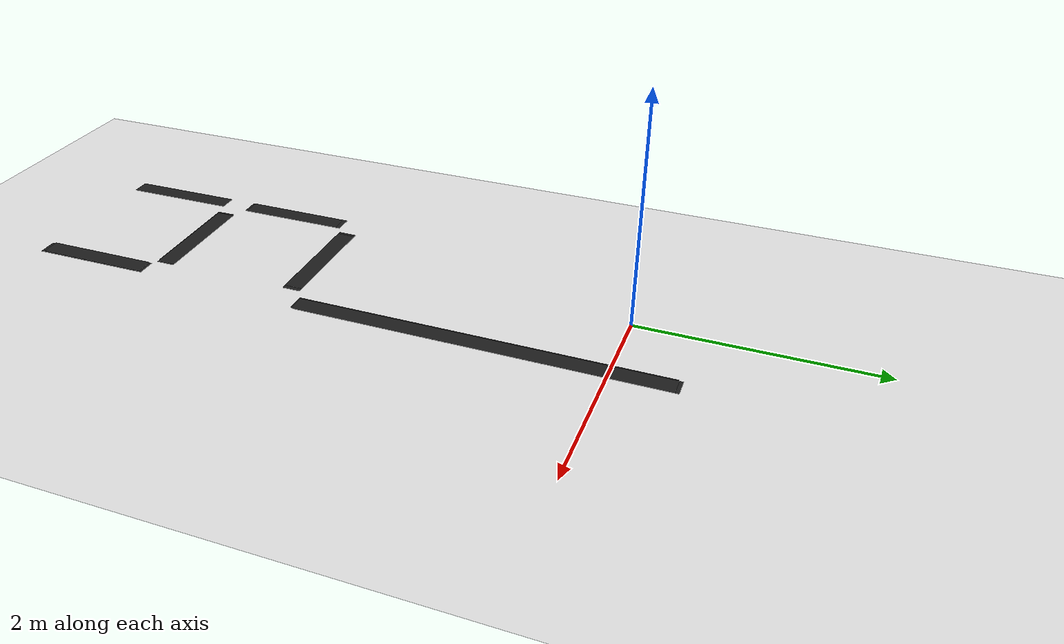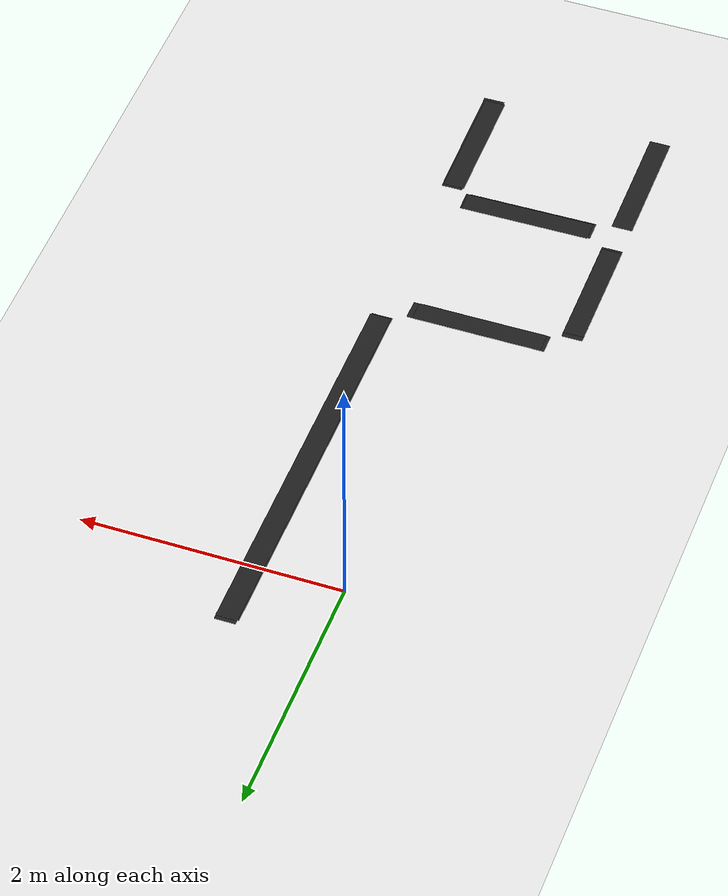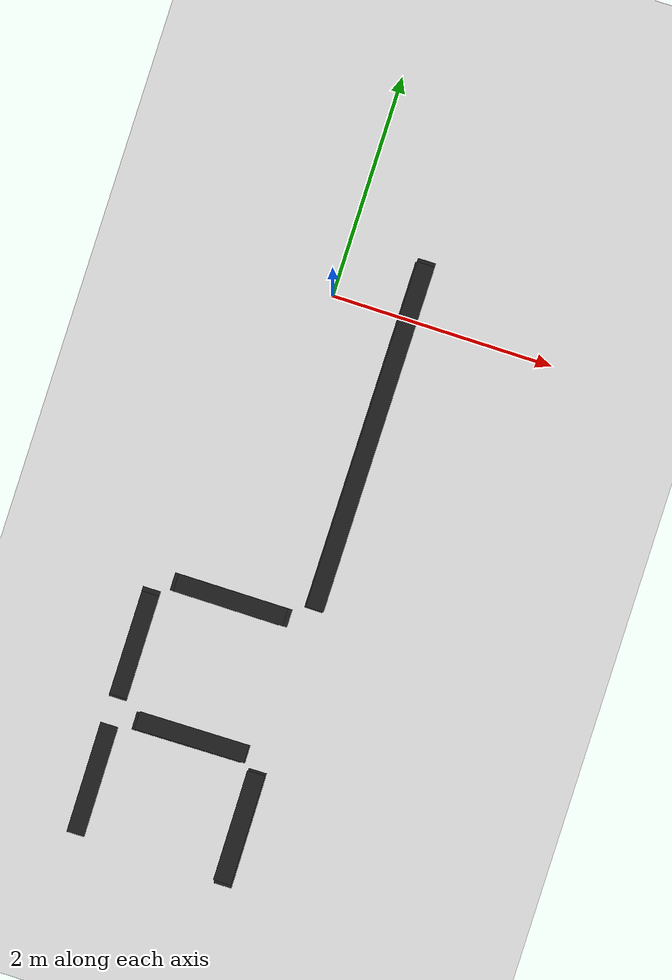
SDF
<sdf version="1.7">
 <world name="default">
  <model name="ground_plane">
   <static>1</static>
   <link name="link">
    <collision name="collision">
     <geometry><plane><normal>0 0 1</normal><size>100 100</size></plane></geometry>
     <surface>
      <contact><collide_bitmask>65535</collide_bitmask></contact>
      <friction><ode><mu>100</mu><mu2>50</mu2></ode></friction>
     </surface>
    </collision>
    <visual name="visual">
     <cast_shadows>0</cast_shadows>
     <geometry><plane><normal>0 0 1</normal><size>100 100</size></plane></geometry>
     <material>
      <script><uri>file://media/materials/scripts/gazebo.material</uri><name>Gazebo/White</name></script>
     </material>
    </visual>
   </link>
  </model>
  <model name="unit_box_clone_0_clone_clone_0">
   <link name="link">
    <inertial>
     <mass>1</mass>
     <inertia>
      <ixx>0.166667</ixx>
      <ixy>0</ixy>
      <ixz>0</ixz>
      <iyy>0.166667</iyy>
      <iyz>0</iyz>
      <izz>0.166667</izz>
     </inertia>
    </inertial>
    <visual name="visual">
     <geometry><box><size>1 0.160776 0.000937</size></box></geometry>
     <material>
      <script><name>Gazebo/Black</name><uri>file://media/materials/scripts/gazebo.material</uri></script>
      <shader type="pixel"><normal_map>__default__</normal_map></shader>
      <ambient>0 0 0 1</ambient>
      <diffuse>0 0 0 1</diffuse>
      <specular>0.1 0.1 0.1 1</specular>
      <emissive>0 0 0 1</emissive>
     </material>
    </visual>
    <collision name="collision">
     <geometry><box><size>1 0.160776 0.000937</size></box></geometry>
     <surface>
      <friction>
       <ode><mu>1</mu><mu2>1</mu2><fdir1>0 0 0</fdir1><slip1>0</slip1><slip2>0</slip2></ode>
       <torsional>
        <coefficient>1</coefficient>
        <patch_radius>0</patch_radius>
        <surface_radius>0</surface_radius>
        <use_patch_radius>1</use_patch_radius>
        <ode><slip>0</slip></ode>
       </torsional>
      </friction>
      <bounce><restitution_coefficient>0</restitution_coefficient><threshold>1e+06</threshold></bounce>
      <contact>
       <collide_without_contact>0</collide_without_contact>
       <collide_without_contact_bitmask>1</collide_without_contact_bitmask>
       <collide_bitmask>1</collide_bitmask>
       <ode>
        <soft_cfm>0</soft_cfm>
        <soft_erp>0.2</soft_erp>
        <kp>1e+13</kp>
        <kd>1</kd>
        <max_vel>0.01</max_vel>
        <min_depth>0</min_depth>
       </ode>
       <bullet>
        <split_impulse>1</split_impulse>
        <split_impulse_penetration_threshold>-0.01</split_impulse_penetration_threshold>
        <soft_cfm>0</soft_cfm>
        <soft_erp>0.2</soft_erp>
        <kp>1e+13</kp>
        <kd>1</kd>
       </bullet>
      </contact>
     </surface>
    </collision>
   </link>
   <static>0</static>
   <pose>-0.000679 -2.79041 0.001946 3e-06 0.000266 -0.000147</pose>
  </model>
  <model name="unit_box_clone_0_clone_clone_clone_clone_clone_clone_clone_0_clone">
   <link name="link">
    <inertial>
     <mass>1</mass>
     <inertia>
      <ixx>0.166667</ixx>
      <ixy>0</ixy>
      <ixz>0</ixz>
      <iyy>0.166667</iyy>
      <iyz>0</iyz>
      <izz>0.166667</izz>
     </inertia>
    </inertial>
    <visual name="visual">
     <geometry><box><size>3.16167 0.161571 0.000937</size></box></geometry>
     <material>
      <script><name>Gazebo/Black</name><uri>file://media/materials/scripts/gazebo.material</uri></script>
      <shader type="pixel"><normal_map>__default__</normal_map></shader>
      <ambient>0 0 0 1</ambient>
      <diffuse>0 0 0 1</diffuse>
      <specular>0.1 0.1 0.1 1</specular>
      <emissive>0 0 0 1</emissive>
     </material>
    </visual>
    <collision name="collision">
     <geometry><box><size>3.16167 0.161571 0.000937</size></box></geometry>
     <surface>
      <friction>
       <ode><mu>1</mu><mu2>1</mu2><fdir1>0 0 0</fdir1><slip1>0</slip1><slip2>0</slip2></ode>
       <torsional>
        <coefficient>1</coefficient>
        <patch_radius>0</patch_radius>
        <surface_radius>0</surface_radius>
        <use_patch_radius>1</use_patch_radius>
        <ode><slip>0</slip></ode>
       </torsional>
      </friction>
      <bounce><restitution_coefficient>0</restitution_coefficient><threshold>1e+06</threshold></bounce>
      <contact>
       <collide_without_contact>0</collide_without_contact>
       <collide_without_contact_bitmask>1</collide_without_contact_bitmask>
       <collide_bitmask>1</collide_bitmask>
       <ode>
        <soft_cfm>0</soft_cfm>
        <soft_erp>0.2</soft_erp>
        <kp>1e+13</kp>
        <kd>1</kd>
        <max_vel>0.01</max_vel>
        <min_depth>0</min_depth>
       </ode>
       <bullet>
        <split_impulse>1</split_impulse>
        <split_impulse_penetration_threshold>-0.01</split_impulse_penetration_threshold>
        <soft_cfm>0</soft_cfm>
        <soft_erp>0.2</soft_erp>
        <kp>1e+13</kp>
        <kd>1</kd>
       </bullet>
      </contact>
     </surface>
    </collision>
   </link>
   <static>0</static>
   <pose>0.685983 -1.06842 0.00204 -2.8e-05 0.000204 -1.57331</pose>
  </model>
  <model name="unit_box_clone_0_clone_clone_0_clone_1">
   <link name="link">
    <inertial>
     <mass>1</mass>
     <inertia>
      <ixx>0.166667</ixx>
      <ixy>0</ixy>
      <ixz>0</ixz>
      <iyy>0.166667</iyy>
      <iyz>0</iyz>
      <izz>0.166667</izz>
     </inertia>
    </inertial>
    <visual name="visual">
     <geometry><box><size>1 0.160776 0.000937</size></box></geometry>
     <material>
      <script><name>Gazebo/Black</name><uri>file://media/materials/scripts/gazebo.material</uri></script>
      <shader type="pixel"><normal_map>__default__</normal_map></shader>
      <ambient>0 0 0 1</ambient>
      <diffuse>0 0 0 1</diffuse>
      <specular>0.1 0.1 0.1 1</specular>
      <emissive>0 0 0 1</emissive>
     </material>
    </visual>
    <collision name="collision">
     <geometry><box><size>1 0.160776 0.000937</size></box></geometry>
     <surface>
      <friction>
       <ode><mu>1</mu><mu2>1</mu2><fdir1>0 0 0</fdir1><slip1>0</slip1><slip2>0</slip2></ode>
       <torsional>
        <coefficient>1</coefficient>
        <patch_radius>0</patch_radius>
        <surface_radius>0</surface_radius>
        <use_patch_radius>1</use_patch_radius>
        <ode><slip>0</slip></ode>
       </torsional>
      </friction>
      <bounce><restitution_coefficient>0</restitution_coefficient><threshold>1e+06</threshold></bounce>
      <contact>
       <collide_without_contact>0</collide_without_contact>
       <collide_without_contact_bitmask>1</collide_without_contact_bitmask>
       <collide_bitmask>1</collide_bitmask>
       <ode>
        <soft_cfm>0</soft_cfm>
        <soft_erp>0.2</soft_erp>
        <kp>1e+13</kp>
        <kd>1</kd>
        <max_vel>0.01</max_vel>
        <min_depth>0</min_depth>
       </ode>
       <bullet>
        <split_impulse>1</split_impulse>
        <split_impulse_penetration_threshold>-0.01</split_impulse_penetration_threshold>
        <soft_cfm>0</soft_cfm>
        <soft_erp>0.2</soft_erp>
        <kp>1e+13</kp>
        <kd>1</kd>
       </bullet>
      </contact>
     </surface>
    </collision>
   </link>
   <static>0</static>
   <pose>0.011094 -4.03607 0.001352 -6e-06 -4e-05 0.011915</pose>
  </model>
  <model name="unit_box_clone_0_clone_clone_0_clone_clone_clone_2">
   <link name="link">
    <inertial>
     <mass>1</mass>
     <inertia>
      <ixx>0.166667</ixx>
      <ixy>0</ixy>
      <ixz>0</ixz>
      <iyy>0.166667</iyy>
      <iyz>0</iyz>
      <izz>0.166667</izz>
     </inertia>
    </inertial>
    <visual name="visual">
     <geometry><box><size>1 0.160776 0.000937</size></box></geometry>
     <material>
      <script><name>Gazebo/Black</name><uri>file://media/materials/scripts/gazebo.material</uri></script>
      <shader type="pixel"><normal_map>__default__</normal_map></shader>
      <ambient>0 0 0 1</ambient>
      <diffuse>0 0 0 1</diffuse>
      <specular>0.1 0.1 0.1 1</specular>
      <emissive>0 0 0 1</emissive>
     </material>
    </visual>
    <collision name="collision">
     <geometry><box><size>1 0.160776 0.000937</size></box></geometry>
     <surface>
      <friction>
       <ode><mu>1</mu><mu2>1</mu2><fdir1>0 0 0</fdir1><slip1>0</slip1><slip2>0</slip2></ode>
       <torsional>
        <coefficient>1</coefficient>
        <patch_radius>0</patch_radius>
        <surface_radius>0</surface_radius>
        <use_patch_radius>1</use_patch_radius>
        <ode><slip>0</slip></ode>
       </torsional>
      </friction>
      <bounce><restitution_coefficient>0</restitution_coefficient><threshold>1e+06</threshold></bounce>
      <contact>
       <collide_without_contact>0</collide_without_contact>
       <collide_without_contact_bitmask>1</collide_without_contact_bitmask>
       <collide_bitmask>1</collide_bitmask>
       <ode>
        <soft_cfm>0</soft_cfm>
        <soft_erp>0.2</soft_erp>
        <kp>1e+13</kp>
        <kd>1</kd>
        <max_vel>0.01</max_vel>
        <min_depth>0</min_depth>
       </ode>
       <bullet>
        <split_impulse>1</split_impulse>
        <split_impulse_penetration_threshold>-0.01</split_impulse_penetration_threshold>
        <soft_cfm>0</soft_cfm>
        <soft_erp>0.2</soft_erp>
        <kp>1e+13</kp>
        <kd>1</kd>
       </bullet>
      </contact>
     </surface>
    </collision>
   </link>
   <static>0</static>
   <pose>0.634884 -4.66107 0.002215 3e-06 -1.7e-05 -1.5636</pose>
  </model>
  <model name="unit_box_clone_0_clone_clone_0_clone_clone_clone_2_clone">
   <link name="link">
    <inertial>
     <mass>1</mass>
     <inertia>
      <ixx>0.166667</ixx>
      <ixy>0</ixy>
      <ixz>0</ixz>
      <iyy>0.166667</iyy>
      <iyz>0</iyz>
      <izz>0.166667</izz>
     </inertia>
    </inertial>
    <visual name="visual">
     <geometry><box><size>1 0.160776 0.000937</size></box></geometry>
     <material>
      <script><name>Gazebo/Black</name><uri>file://media/materials/scripts/gazebo.material</uri></script>
      <shader type="pixel"><normal_map>__default__</normal_map></shader>
      <ambient>0 0 0 1</ambient>
      <diffuse>0 0 0 1</diffuse>
      <specular>0.1 0.1 0.1 1</specular>
      <emissive>0 0 0 1</emissive>
     </material>
    </visual>
    <collision name="collision">
     <geometry><box><size>1 0.160776 0.000937</size></box></geometry>
     <surface>
      <friction>
       <ode><mu>1</mu><mu2>1</mu2><fdir1>0 0 0</fdir1><slip1>0</slip1><slip2>0</slip2></ode>
       <torsional>
        <coefficient>1</coefficient>
        <patch_radius>0</patch_radius>
        <surface_radius>0</surface_radius>
        <use_patch_radius>1</use_patch_radius>
        <ode><slip>0</slip></ode>
       </torsional>
      </friction>
      <bounce><restitution_coefficient>0</restitution_coefficient><threshold>1e+06</threshold></bounce>
      <contact>
       <collide_without_contact>0</collide_without_contact>
       <collide_without_contact_bitmask>1</collide_without_contact_bitmask>
       <collide_bitmask>1</collide_bitmask>
       <ode>
        <soft_cfm>0</soft_cfm>
        <soft_erp>0.2</soft_erp>
        <kp>1e+13</kp>
        <kd>1</kd>
        <max_vel>0.01</max_vel>
        <min_depth>0</min_depth>
       </ode>
       <bullet>
        <split_impulse>1</split_impulse>
        <split_impulse_penetration_threshold>-0.01</split_impulse_penetration_threshold>
        <soft_cfm>0</soft_cfm>
        <soft_erp>0.2</soft_erp>
        <kp>1e+13</kp>
        <kd>1</kd>
       </bullet>
      </contact>
     </surface>
    </collision>
   </link>
   <static>0</static>
   <pose>-0.719144 -3.40915 0.000469 2e-06 -0 -1.56543</pose>
  </model>
  <model name="unit_box_clone_0_clone_clone_0_clone_0_clone_1">
   <link name="link">
    <inertial>
     <mass>1</mass>
     <inertia>
      <ixx>0.166667</ixx>
      <ixy>0</ixy>
      <ixz>0</ixz>
      <iyy>0.166667</iyy>
      <iyz>0</iyz>
      <izz>0.166667</izz>
     </inertia>
    </inertial>
    <visual name="visual">
     <geometry><box><size>1 0.160776 0.000937</size></box></geometry>
     <material>
      <script><name>Gazebo/Black</name><uri>file://media/materials/scripts/gazebo.material</uri></script>
      <shader type="pixel"><normal_map>__default__</normal_map></shader>
      <ambient>0 0 0 1</ambient>
      <diffuse>0 0 0 1</diffuse>
      <specular>0.1 0.1 0.1 1</specular>
      <emissive>0 0 0 1</emissive>
     </material>
    </visual>
    <collision name="collision">
     <geometry><box><size>1 0.160776 0.000937</size></box></geometry>
     <surface>
      <friction>
       <ode><mu>1</mu><mu2>1</mu2><fdir1>0 0 0</fdir1><slip1>0</slip1><slip2>0</slip2></ode>
       <torsional>
        <coefficient>1</coefficient>
        <patch_radius>0</patch_radius>
        <surface_radius>0</surface_radius>
        <use_patch_radius>1</use_patch_radius>
        <ode><slip>0</slip></ode>
       </torsional>
      </friction>
      <bounce><restitution_coefficient>0</restitution_coefficient><threshold>1e+06</threshold></bounce>
      <contact>
       <collide_without_contact>0</collide_without_contact>
       <collide_without_contact_bitmask>1</collide_without_contact_bitmask>
       <collide_bitmask>1</collide_bitmask>
       <ode>
        <soft_cfm>0</soft_cfm>
        <soft_erp>0.2</soft_erp>
        <kp>1e+13</kp>
        <kd>1</kd>
        <max_vel>0.01</max_vel>
        <min_depth>0</min_depth>
       </ode>
       <bullet>
        <split_impulse>1</split_impulse>
        <split_impulse_penetration_threshold>-0.01</split_impulse_penetration_threshold>
        <soft_cfm>0</soft_cfm>
        <soft_erp>0.2</soft_erp>
        <kp>1e+13</kp>
        <kd>1</kd>
       </bullet>
      </contact>
     </surface>
    </collision>
   </link>
   <static>0</static>
   <pose>-0.041119 -2.7916 0.002893 4e-06 0.000266 0.000137</pose>
  </model>
  <model name="unit_box_clone_0_clone_clone_0_clone_0_clone_2">
   <link name="link">
    <inertial>
     <mass>1</mass>
     <inertia>
      <ixx>0.166667</ixx>
      <ixy>0</ixy>
      <ixz>0</ixz>
      <iyy>0.166667</iyy>
      <iyz>0</iyz>
      <izz>0.166667</izz>
     </inertia>
    </inertial>
    <visual name="visual">
     <geometry><box><size>1 0.160776 0.000937</size></box></geometry>
     <material>
      <script><name>Gazebo/Black</name><uri>file://media/materials/scripts/gazebo.material</uri></script>
      <shader type="pixel"><normal_map>__default__</normal_map></shader>
      <ambient>0 0 0 1</ambient>
      <diffuse>0 0 0 1</diffuse>
      <specular>0.1 0.1 0.1 1</specular>
      <emissive>0 0 0 1</emissive>
     </material>
    </visual>
    <collision name="collision">
     <geometry><box><size>1 0.160776 0.000937</size></box></geometry>
     <surface>
      <friction>
       <ode><mu>1</mu><mu2>1</mu2><fdir1>0 0 0</fdir1><slip1>0</slip1><slip2>0</slip2></ode>
       <torsional>
        <coefficient>1</coefficient>
        <patch_radius>0</patch_radius>
        <surface_radius>0</surface_radius>
        <use_patch_radius>1</use_patch_radius>
        <ode><slip>0</slip></ode>
       </torsional>
      </friction>
      <bounce><restitution_coefficient>0</restitution_coefficient><threshold>1e+06</threshold></bounce>
      <contact>
       <collide_without_contact>0</collide_without_contact>
       <collide_without_contact_bitmask>1</collide_without_contact_bitmask>
       <collide_bitmask>1</collide_bitmask>
       <ode>
        <soft_cfm>0</soft_cfm>
        <soft_erp>0.2</soft_erp>
        <kp>1e+13</kp>
        <kd>1</kd>
        <max_vel>0.01</max_vel>
        <min_depth>0</min_depth>
       </ode>
       <bullet>
        <split_impulse>1</split_impulse>
        <split_impulse_penetration_threshold>-0.01</split_impulse_penetration_threshold>
        <soft_cfm>0</soft_cfm>
        <soft_erp>0.2</soft_erp>
        <kp>1e+13</kp>
        <kd>1</kd>
       </bullet>
      </contact>
     </surface>
    </collision>
   </link>
   <static>0</static>
   <pose>-0.028517 -2.79151 0.000468 1e-06 0 -0.000912</pose>
  </model>
  <model name="unit_box_clone_0_clone_clone_0_clone_0_clone_3">
   <link name="link">
    <inertial>
     <mass>1</mass>
     <inertia>
      <ixx>0.166667</ixx>
      <ixy>0</ixy>
      <ixz>0</ixz>
      <iyy>0.166667</iyy>
      <iyz>0</iyz>
      <izz>0.166667</izz>
     </inertia>
    </inertial>
    <visual name="visual">
     <geometry><box><size>1 0.160776 0.000937</size></box></geometry>
     <material>
      <script><name>Gazebo/Black</name><uri>file://media/materials/scripts/gazebo.material</uri></script>
      <shader type="pixel"><normal_map>__default__</normal_map></shader>
      <ambient>0 0 0 1</ambient>
      <diffuse>0 0 0 1</diffuse>
      <specular>0.1 0.1 0.1 1</specular>
      <emissive>0 0 0 1</emissive>
     </material>
    </visual>
    <collision name="collision">
     <geometry><box><size>1 0.160776 0.000937</size></box></geometry>
     <surface>
      <friction>
       <ode><mu>1</mu><mu2>1</mu2><fdir1>0 0 0</fdir1><slip1>0</slip1><slip2>0</slip2></ode>
       <torsional>
        <coefficient>1</coefficient>
        <patch_radius>0</patch_radius>
        <surface_radius>0</surface_radius>
        <use_patch_radius>1</use_patch_radius>
        <ode><slip>0</slip></ode>
       </torsional>
      </friction>
      <bounce><restitution_coefficient>0</restitution_coefficient><threshold>1e+06</threshold></bounce>
      <contact>
       <collide_without_contact>0</collide_without_contact>
       <collide_without_contact_bitmask>1</collide_without_contact_bitmask>
       <collide_bitmask>1</collide_bitmask>
       <ode>
        <soft_cfm>0</soft_cfm>
        <soft_erp>0.2</soft_erp>
        <kp>1e+13</kp>
        <kd>1</kd>
        <max_vel>0.01</max_vel>
        <min_depth>0</min_depth>
       </ode>
       <bullet>
        <split_impulse>1</split_impulse>
        <split_impulse_penetration_threshold>-0.01</split_impulse_penetration_threshold>
        <soft_cfm>0</soft_cfm>
        <soft_erp>0.2</soft_erp>
        <kp>1e+13</kp>
        <kd>1</kd>
       </bullet>
      </contact>
     </surface>
    </collision>
   </link>
   <static>0</static>
   <pose>-0.070832 -2.79248 0.00124 3e-06 -0.000332 -0.00424</pose>
  </model>
  <model name="unit_box_clone_0_clone_clone_0_clone_1_clone_0">
   <link name="link">
    <inertial>
     <mass>1</mass>
     <inertia>
      <ixx>0.166667</ixx>
      <ixy>0</ixy>
      <ixz>0</ixz>
      <iyy>0.166667</iyy>
      <iyz>0</iyz>
      <izz>0.166667</izz>
     </inertia>
    </inertial>
    <visual name="visual">
     <geometry><box><size>1 0.160776 0.000937</size></box></geometry>
     <material>
      <script><name>Gazebo/Black</name><uri>file://media/materials/scripts/gazebo.material</uri></script>
      <shader type="pixel"><normal_map>__default__</normal_map></shader>
      <ambient>0 0 0 1</ambient>
      <diffuse>0 0 0 1</diffuse>
      <specular>0.1 0.1 0.1 1</specular>
      <emissive>0 0 0 1</emissive>
     </material>
    </visual>
    <collision name="collision">
     <geometry><box><size>1 0.160776 0.000937</size></box></geometry>
     <surface>
      <friction>
       <ode><mu>1</mu><mu2>1</mu2><fdir1>0 0 0</fdir1><slip1>0</slip1><slip2>0</slip2></ode>
       <torsional>
        <coefficient>1</coefficient>
        <patch_radius>0</patch_radius>
        <surface_radius>0</surface_radius>
        <use_patch_radius>1</use_patch_radius>
        <ode><slip>0</slip></ode>
       </torsional>
      </friction>
      <bounce><restitution_coefficient>0</restitution_coefficient><threshold>1e+06</threshold></bounce>
      <contact>
       <collide_without_contact>0</collide_without_contact>
       <collide_without_contact_bitmask>1</collide_without_contact_bitmask>
       <collide_bitmask>1</collide_bitmask>
       <ode>
        <soft_cfm>0</soft_cfm>
        <soft_erp>0.2</soft_erp>
        <kp>1e+13</kp>
        <kd>1</kd>
        <max_vel>0.01</max_vel>
        <min_depth>0</min_depth>
       </ode>
       <bullet>
        <split_impulse>1</split_impulse>
        <split_impulse_penetration_threshold>-0.01</split_impulse_penetration_threshold>
        <soft_cfm>0</soft_cfm>
        <soft_erp>0.2</soft_erp>
        <kp>1e+13</kp>
        <kd>1</kd>
       </bullet>
      </contact>
     </surface>
    </collision>
   </link>
   <static>0</static>
   <pose>0.000691 -4.03334 0.002289 -6e-06 -4e-05 0.009218</pose>
  </model>
  <model name="unit_box_clone_0_clone_clone_0_clone_1_clone_1">
   <link name="link">
    <inertial>
     <mass>1</mass>
     <inertia>
      <ixx>0.166667</ixx>
      <ixy>0</ixy>
      <ixz>0</ixz>
      <iyy>0.166667</iyy>
      <iyz>0</iyz>
      <izz>0.166667</izz>
     </inertia>
    </inertial>
    <visual name="visual">
     <geometry><box><size>1 0.160776 0.000937</size></box></geometry>
     <material>
      <script><name>Gazebo/Black</name><uri>file://media/materials/scripts/gazebo.material</uri></script>
      <shader type="pixel"><normal_map>__default__</normal_map></shader>
      <ambient>0 0 0 1</ambient>
      <diffuse>0 0 0 1</diffuse>
      <specular>0.1 0.1 0.1 1</specular>
      <emissive>0 0 0 1</emissive>
     </material>
    </visual>
    <collision name="collision">
     <geometry><box><size>1 0.160776 0.000937</size></box></geometry>
     <surface>
      <friction>
       <ode><mu>1</mu><mu2>1</mu2><fdir1>0 0 0</fdir1><slip1>0</slip1><slip2>0</slip2></ode>
       <torsional>
        <coefficient>1</coefficient>
        <patch_radius>0</patch_radius>
        <surface_radius>0</surface_radius>
        <use_patch_radius>1</use_patch_radius>
        <ode><slip>0</slip></ode>
       </torsional>
      </friction>
      <bounce><restitution_coefficient>0</restitution_coefficient><threshold>1e+06</threshold></bounce>
      <contact>
       <collide_without_contact>0</collide_without_contact>
       <collide_without_contact_bitmask>1</collide_without_contact_bitmask>
       <collide_bitmask>1</collide_bitmask>
       <ode>
        <soft_cfm>0</soft_cfm>
        <soft_erp>0.2</soft_erp>
        <kp>1e+13</kp>
        <kd>1</kd>
        <max_vel>0.01</max_vel>
        <min_depth>0</min_depth>
       </ode>
       <bullet>
        <split_impulse>1</split_impulse>
        <split_impulse_penetration_threshold>-0.01</split_impulse_penetration_threshold>
        <soft_cfm>0</soft_cfm>
        <soft_erp>0.2</soft_erp>
        <kp>1e+13</kp>
        <kd>1</kd>
       </bullet>
      </contact>
     </surface>
    </collision>
   </link>
   <static>0</static>
   <pose>-0.019997 -4.04191 0.000463 -4e-06 -1.1e-05 0.011404</pose>
  </model>
  <model name="unit_box_clone_0_clone_clone_0_clone_clone_clone_1_clone_0">
   <link name="link">
    <inertial>
     <mass>1</mass>
     <inertia>
      <ixx>0.166667</ixx>
      <ixy>0</ixy>
      <ixz>0</ixz>
      <iyy>0.166667</iyy>
      <iyz>0</iyz>
      <izz>0.166667</izz>
     </inertia>
    </inertial>
    <visual name="visual">
     <geometry><box><size>1 0.160776 0.000937</size></box></geometry>
     <material>
      <script><name>Gazebo/Black</name><uri>file://media/materials/scripts/gazebo.material</uri></script>
      <shader type="pixel"><normal_map>__default__</normal_map></shader>
      <ambient>0 0 0 1</ambient>
      <diffuse>0 0 0 1</diffuse>
      <specular>0.1 0.1 0.1 1</specular>
      <emissive>0 0 0 1</emissive>
     </material>
    </visual>
    <collision name="collision">
     <geometry><box><size>1 0.160776 0.000937</size></box></geometry>
     <surface>
      <friction>
       <ode><mu>1</mu><mu2>1</mu2><fdir1>0 0 0</fdir1><slip1>0</slip1><slip2>0</slip2></ode>
       <torsional>
        <coefficient>1</coefficient>
        <patch_radius>0</patch_radius>
        <surface_radius>0</surface_radius>
        <use_patch_radius>1</use_patch_radius>
        <ode><slip>0</slip></ode>
       </torsional>
      </friction>
      <bounce><restitution_coefficient>0</restitution_coefficient><threshold>1e+06</threshold></bounce>
      <contact>
       <collide_without_contact>0</collide_without_contact>
       <collide_without_contact_bitmask>1</collide_without_contact_bitmask>
       <collide_bitmask>1</collide_bitmask>
       <ode>
        <soft_cfm>0</soft_cfm>
        <soft_erp>0.2</soft_erp>
        <kp>1e+13</kp>
        <kd>1</kd>
        <max_vel>0.01</max_vel>
        <min_depth>0</min_depth>
       </ode>
       <bullet>
        <split_impulse>1</split_impulse>
        <split_impulse_penetration_threshold>-0.01</split_impulse_penetration_threshold>
        <soft_cfm>0</soft_cfm>
        <soft_erp>0.2</soft_erp>
        <kp>1e+13</kp>
        <kd>1</kd>
       </bullet>
      </contact>
     </surface>
    </collision>
   </link>
   <static>0</static>
   <pose>-0.710878 -4.64876 0.001337 3e-06 -0.000137 -1.56253</pose>
  </model>
  <model name="unit_box_clone_0_clone_clone_0_clone_clone_clone_2_clone_0">
   <link name="link">
    <inertial>
     <mass>1</mass>
     <inertia>
      <ixx>0.166667</ixx>
      <ixy>0</ixy>
      <ixz>0</ixz>
      <iyy>0.166667</iyy>
      <iyz>0</iyz>
      <izz>0.166667</izz>
     </inertia>
    </inertial>
    <visual name="visual">
     <geometry><box><size>1 0.160776 0.000937</size></box></geometry>
     <material>
      <script><name>Gazebo/Black</name><uri>file://media/materials/scripts/gazebo.material</uri></script>
      <shader type="pixel"><normal_map>__default__</normal_map></shader>
      <ambient>0 0 0 1</ambient>
      <diffuse>0 0 0 1</diffuse>
      <specular>0.1 0.1 0.1 1</specular>
      <emissive>0 0 0 1</emissive>
     </material>
    </visual>
    <collision name="collision">
     <geometry><box><size>1 0.160776 0.000937</size></box></geometry>
     <surface>
      <friction>
       <ode><mu>1</mu><mu2>1</mu2><fdir1>0 0 0</fdir1><slip1>0</slip1><slip2>0</slip2></ode>
       <torsional>
        <coefficient>1</coefficient>
        <patch_radius>0</patch_radius>
        <surface_radius>0</surface_radius>
        <use_patch_radius>1</use_patch_radius>
        <ode><slip>0</slip></ode>
       </torsional>
      </friction>
      <bounce><restitution_coefficient>0</restitution_coefficient><threshold>1e+06</threshold></bounce>
      <contact>
       <collide_without_contact>0</collide_without_contact>
       <collide_without_contact_bitmask>1</collide_without_contact_bitmask>
       <collide_bitmask>1</collide_bitmask>
       <ode>
        <soft_cfm>0</soft_cfm>
        <soft_erp>0.2</soft_erp>
        <kp>1e+13</kp>
        <kd>1</kd>
        <max_vel>0.01</max_vel>
        <min_depth>0</min_depth>
       </ode>
       <bullet>
        <split_impulse>1</split_impulse>
        <split_impulse_penetration_threshold>-0.01</split_impulse_penetration_threshold>
        <soft_cfm>0</soft_cfm>
        <soft_erp>0.2</soft_erp>
        <kp>1e+13</kp>
        <kd>1</kd>
       </bullet>
      </contact>
     </surface>
    </collision>
   </link>
   <static>0</static>
   <pose>0.646522 -4.68557 0.001286 2e-06 -1e-06 -1.56077</pose>
  </model>
  <model name="unit_box_clone_0_clone_clone_0_clone_clone_clone_2_clone_1">
   <link name="link">
    <inertial>
     <mass>1</mass>
     <inertia>
      <ixx>0.166667</ixx>
      <ixy>0</ixy>
      <ixz>0</ixz>
      <iyy>0.166667</iyy>
      <iyz>0</iyz>
      <izz>0.166667</izz>
     </inertia>
    </inertial>
    <visual name="visual">
     <geometry><box><size>1 0.160776 0.000937</size></box></geometry>
     <material>
      <script><name>Gazebo/Black</name><uri>file://media/materials/scripts/gazebo.material</uri></script>
      <shader type="pixel"><normal_map>__default__</normal_map></shader>
      <ambient>0 0 0 1</ambient>
      <diffuse>0 0 0 1</diffuse>
      <specular>0.1 0.1 0.1 1</specular>
      <emissive>0 0 0 1</emissive>
     </material>
    </visual>
    <collision name="collision">
     <geometry><box><size>1 0.160776 0.000937</size></box></geometry>
     <surface>
      <friction>
       <ode><mu>1</mu><mu2>1</mu2><fdir1>0 0 0</fdir1><slip1>0</slip1><slip2>0</slip2></ode>
       <torsional>
        <coefficient>1</coefficient>
        <patch_radius>0</patch_radius>
        <surface_radius>0</surface_radius>
        <use_patch_radius>1</use_patch_radius>
        <ode><slip>0</slip></ode>
       </torsional>
      </friction>
      <bounce><restitution_coefficient>0</restitution_coefficient><threshold>1e+06</threshold></bounce>
      <contact>
       <collide_without_contact>0</collide_without_contact>
       <collide_without_contact_bitmask>1</collide_without_contact_bitmask>
       <collide_bitmask>1</collide_bitmask>
       <ode>
        <soft_cfm>0</soft_cfm>
        <soft_erp>0.2</soft_erp>
        <kp>1e+13</kp>
        <kd>1</kd>
        <max_vel>0.01</max_vel>
        <min_depth>0</min_depth>
       </ode>
       <bullet>
        <split_impulse>1</split_impulse>
        <split_impulse_penetration_threshold>-0.01</split_impulse_penetration_threshold>
        <soft_cfm>0</soft_cfm>
        <soft_erp>0.2</soft_erp>
        <kp>1e+13</kp>
        <kd>1</kd>
       </bullet>
      </contact>
     </surface>
    </collision>
   </link>
   <static>0</static>
   <pose>0.64441 -4.63905 0.000409 1e-06 0.000119 -1.56115</pose>
  </model>
  <model name="unit_box_clone_0_clone_clone_clone_clone_clone_clone_clone_0_clone_clone">
   <link name="link">
    <inertial>
     <mass>1</mass>
     <inertia>
      <ixx>0.166667</ixx>
      <ixy>0</ixy>
      <ixz>0</ixz>
      <iyy>0.166667</iyy>
      <iyz>0</iyz>
      <izz>0.166667</izz>
     </inertia>
    </inertial>
    <visual name="visual">
     <geometry><box><size>3.16167 0.161571 0.000937</size></box></geometry>
     <material>
      <script><name>Gazebo/Black</name><uri>file://media/materials/scripts/gazebo.material</uri></script>
      <shader type="pixel"><normal_map>__default__</normal_map></shader>
      <ambient>0 0 0 1</ambient>
      <diffuse>0 0 0 1</diffuse>
      <specular>0.1 0.1 0.1 1</specular>
      <emissive>0 0 0 1</emissive>
     </material>
    </visual>
    <collision name="collision">
     <geometry><box><size>3.16167 0.161571 0.000937</size></box></geometry>
     <surface>
      <friction>
       <ode><mu>1</mu><mu2>1</mu2><fdir1>0 0 0</fdir1><slip1>0</slip1><slip2>0</slip2></ode>
       <torsional>
        <coefficient>1</coefficient>
        <patch_radius>0</patch_radius>
        <surface_radius>0</surface_radius>
        <use_patch_radius>1</use_patch_radius>
        <ode><slip>0</slip></ode>
       </torsional>
      </friction>
      <bounce><restitution_coefficient>0</restitution_coefficient><threshold>1e+06</threshold></bounce>
      <contact>
       <collide_without_contact>0</collide_without_contact>
       <collide_without_contact_bitmask>1</collide_without_contact_bitmask>
       <collide_bitmask>1</collide_bitmask>
       <ode>
        <soft_cfm>0</soft_cfm>
        <soft_erp>0.2</soft_erp>
        <kp>1e+13</kp>
        <kd>1</kd>
        <max_vel>0.01</max_vel>
        <min_depth>0</min_depth>
       </ode>
       <bullet>
        <split_impulse>1</split_impulse>
        <split_impulse_penetration_threshold>-0.01</split_impulse_penetration_threshold>
        <soft_cfm>0</soft_cfm>
        <soft_erp>0.2</soft_erp>
        <kp>1e+13</kp>
        <kd>1</kd>
       </bullet>
      </contact>
     </surface>
    </collision>
   </link>
   <static>0</static>
   <pose>0.674955 -1.07578 0.001088 9.1e-05 0.0002 -1.57278</pose>
  </model>
  <model name="unit_box_clone_0_clone_clone_clone_clone_clone_clone_clone_0_clone_clone_0">
   <link name="link">
    <inertial>
     <mass>1</mass>
     <inertia>
      <ixx>0.166667</ixx>
      <ixy>0</ixy>
      <ixz>0</ixz>
      <iyy>0.166667</iyy>
      <iyz>0</iyz>
      <izz>0.166667</izz>
     </inertia>
    </inertial>
    <visual name="visual">
     <geometry><box><size>3.16167 0.161571 0.000937</size></box></geometry>
     <material>
      <script><name>Gazebo/Black</name><uri>file://media/materials/scripts/gazebo.material</uri></script>
      <shader type="pixel"><normal_map>__default__</normal_map></shader>
      <ambient>0 0 0 1</ambient>
      <diffuse>0 0 0 1</diffuse>
      <specular>0.1 0.1 0.1 1</specular>
      <emissive>0 0 0 1</emissive>
     </material>
    </visual>
    <collision name="collision">
     <geometry><box><size>3.16167 0.161571 0.000937</size></box></geometry>
     <surface>
      <friction>
       <ode><mu>1</mu><mu2>1</mu2><fdir1>0 0 0</fdir1><slip1>0</slip1><slip2>0</slip2></ode>
       <torsional>
        <coefficient>1</coefficient>
        <patch_radius>0</patch_radius>
        <surface_radius>0</surface_radius>
        <use_patch_radius>1</use_patch_radius>
        <ode><slip>0</slip></ode>
       </torsional>
      </friction>
      <bounce><restitution_coefficient>0</restitution_coefficient><threshold>1e+06</threshold></bounce>
      <contact>
       <collide_without_contact>0</collide_without_contact>
       <collide_without_contact_bitmask>1</collide_without_contact_bitmask>
       <collide_bitmask>1</collide_bitmask>
       <ode>
        <soft_cfm>0</soft_cfm>
        <soft_erp>0.2</soft_erp>
        <kp>1e+13</kp>
        <kd>1</kd>
        <max_vel>0.01</max_vel>
        <min_depth>0</min_depth>
       </ode>
       <bullet>
        <split_impulse>1</split_impulse>
        <split_impulse_penetration_threshold>-0.01</split_impulse_penetration_threshold>
        <soft_cfm>0</soft_cfm>
        <soft_erp>0.2</soft_erp>
        <kp>1e+13</kp>
        <kd>1</kd>
       </bullet>
      </contact>
     </surface>
    </collision>
   </link>
   <static>0</static>
   <pose>0.685878 -1.03699 0.000159 0.000131 0.000203 -1.57276</pose>
  </model>
  <model name="unit_box_clone_0_clone_clone_0_clone_clone_clone_2_clone_clone_0">
   <link name="link">
    <inertial>
     <mass>1</mass>
     <inertia>
      <ixx>0.166667</ixx>
      <ixy>0</ixy>
      <ixz>0</ixz>
      <iyy>0.166667</iyy>
      <iyz>0</iyz>
      <izz>0.166667</izz>
     </inertia>
    </inertial>
    <visual name="visual">
     <geometry><box><size>0.939585 0.160776 0.000937</size></box></geometry>
     <material>
      <script><name>Gazebo/Black</name><uri>file://media/materials/scripts/gazebo.material</uri></script>
      <shader type="pixel"><normal_map>__default__</normal_map></shader>
      <ambient>0 0 0 1</ambient>
      <diffuse>0 0 0 1</diffuse>
      <specular>0.1 0.1 0.1 1</specular>
      <emissive>0 0 0 1</emissive>
     </material>
    </visual>
    <collision name="collision">
     <geometry><box><size>0.939585 0.160776 0.000937</size></box></geometry>
     <surface>
      <friction>
       <ode><mu>1</mu><mu2>1</mu2><fdir1>0 0 0</fdir1><slip1>0</slip1><slip2>0</slip2></ode>
       <torsional>
        <coefficient>1</coefficient>
        <patch_radius>0</patch_radius>
        <surface_radius>0</surface_radius>
        <use_patch_radius>1</use_patch_radius>
        <ode><slip>0</slip></ode>
       </torsional>
      </friction>
      <bounce><restitution_coefficient>0</restitution_coefficient><threshold>1e+06</threshold></bounce>
      <contact>
       <collide_without_contact>0</collide_without_contact>
       <collide_without_contact_bitmask>1</collide_without_contact_bitmask>
       <collide_bitmask>1</collide_bitmask>
       <ode>
        <soft_cfm>0</soft_cfm>
        <soft_erp>0.2</soft_erp>
        <kp>1e+13</kp>
        <kd>1</kd>
        <max_vel>0.01</max_vel>
        <min_depth>0</min_depth>
       </ode>
       <bullet>
        <split_impulse>1</split_impulse>
        <split_impulse_penetration_threshold>-0.01</split_impulse_penetration_threshold>
        <soft_cfm>0</soft_cfm>
        <soft_erp>0.2</soft_erp>
        <kp>1e+13</kp>
        <kd>1</kd>
       </bullet>
      </contact>
     </surface>
    </collision>
   </link>
   <static>0</static>
   <pose>-0.719694 -3.42083 0.001406 3e-06 -1e-06 -1.5683</pose>
  </model>
 </world>
</sdf>
